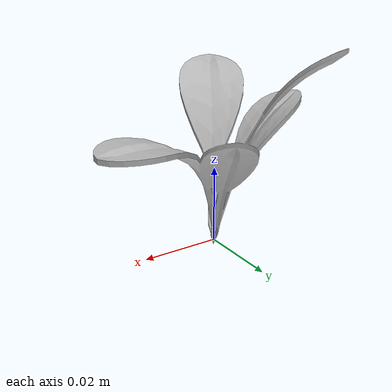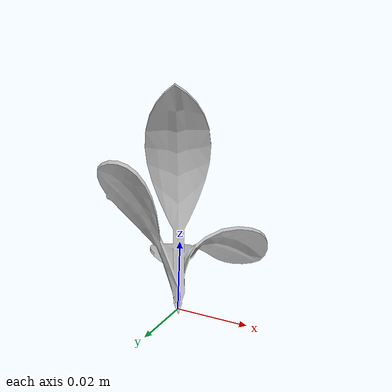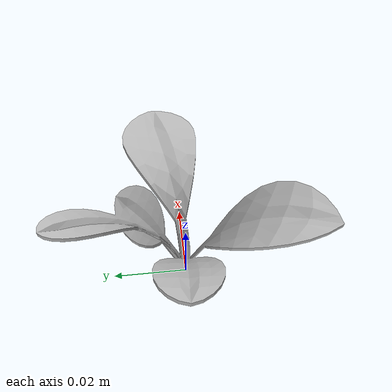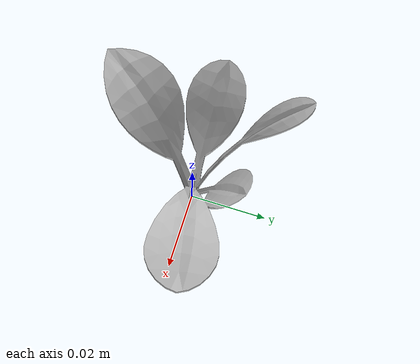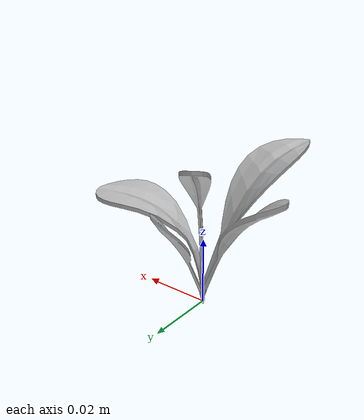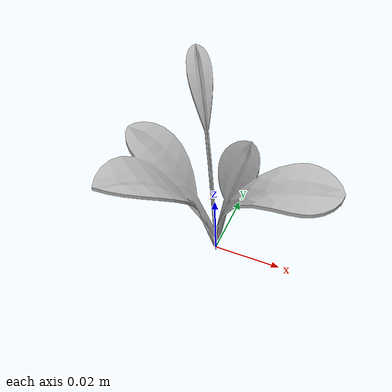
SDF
<sdf version="1.6">
  <model name="sugar_beet_57">
    <static>true</static>
    <link name="body">
      <visual name="visual">
        <geometry>
          <mesh>
            <uri>file:///sugar_beet_57/media/sugar_beet.dae</uri>
          </mesh>
        </geometry>
      </visual>
    </link>
  </model>
</sdf>
